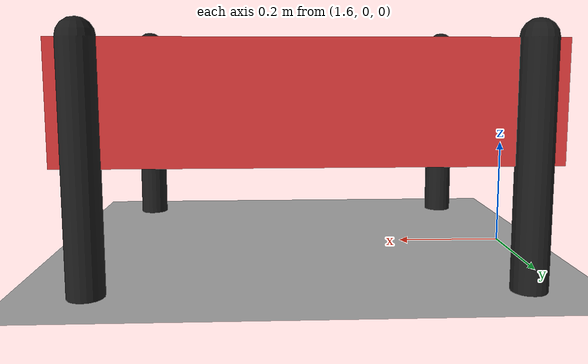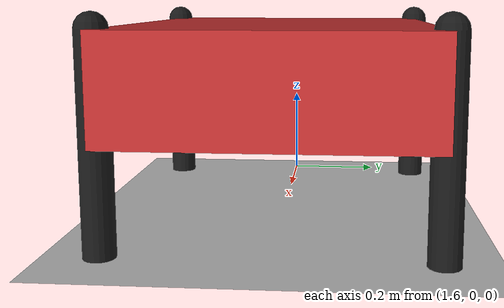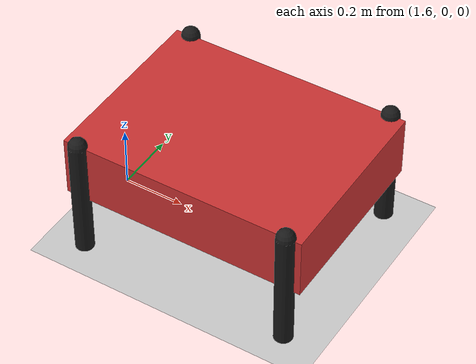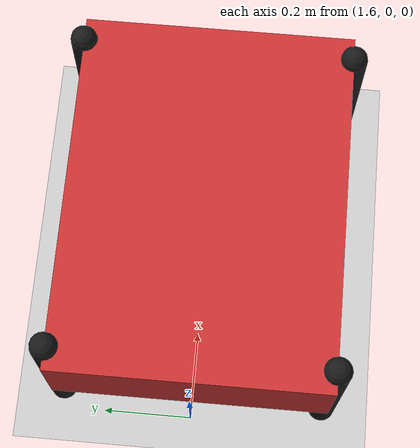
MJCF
<mujoco model="simple_robot_mjx">
  <compiler angle="degree" autolimits="true"/>

  <option timestep="0.01" gravity="0 0 -9.81"/>

  <default>
    <geom friction="1.2 0.01 0.2"/>
  </default>

  <asset>
    <material name="mat_chassis" rgba="0.8 0.2 0.2 1"/>
    <material name="mat_wheel" rgba="0.1 0.1 0.1 1"/>
    <material name="mat_floor" rgba="0.8 0.8 0.8 1"/>
  </asset>

  <worldbody>
    <!-- Simple floor plane (MJX compatible) -->
    <geom name="floor" type="plane" size="50 1.5 0.1" pos="50 0 0" material="mat_floor"/>

    <!-- Robot with CAPSULE wheels instead of cylinders (MJX compatible) -->
    <body name="robot" pos="2 0 0.3">
      <joint name="root" type="free" damping="0.1"/>
      <geom name="chassis" type="box" size="0.40 0.30 0.10" material="mat_chassis" mass="15"/>

      <!-- Front-left wheel: CAPSULE instead of cylinder -->
      <body name="wheel_fl" pos="0.35 0.30 -0.10">
        <joint name="hinge_fl" type="hinge" axis="0 1 0" damping="0.2" limited="false"/>
        <geom name="geom_fl" type="capsule" size="0.03 0.2" material="mat_wheel" mass="1.0"/>
      </body>

      <!-- Front-right wheel -->
      <body name="wheel_fr" pos="0.35 -0.30 -0.10">
        <joint name="hinge_fr" type="hinge" axis="0 1 0" damping="0.2" limited="false"/>
        <geom name="geom_fr" type="capsule" size="0.03 0.2" material="mat_wheel" mass="1.0"/>
      </body>

      <!-- Rear-left wheel -->
      <body name="wheel_rl" pos="-0.35 0.30 -0.10">
        <joint name="hinge_rl" type="hinge" axis="0 1 0" damping="0.2" limited="false"/>
        <geom name="geom_rl" type="capsule" size="0.03 0.2" material="mat_wheel" mass="1.0"/>
      </body>

      <!-- Rear-right wheel -->
      <body name="wheel_rr" pos="-0.35 -0.30 -0.10">
        <joint name="hinge_rr" type="hinge" axis="0 1 0" damping="0.2" limited="false"/>
        <geom name="geom_rr" type="capsule" size="0.03 0.2" material="mat_wheel" mass="1.0"/>
      </body>
    </body>
  </worldbody>

  <actuator>
    <velocity name="motor_fl" joint="hinge_fl" kv="2" ctrllimited="true" ctrlrange="-100 100"/>
    <velocity name="motor_fr" joint="hinge_fr" kv="2" ctrllimited="true" ctrlrange="-100 100"/>
    <velocity name="motor_rl" joint="hinge_rl" kv="2" ctrllimited="true" ctrlrange="-100 100"/>
    <velocity name="motor_rr" joint="hinge_rr" kv="2" ctrllimited="true" ctrlrange="-100 100"/>
  </actuator>
</mujoco>
